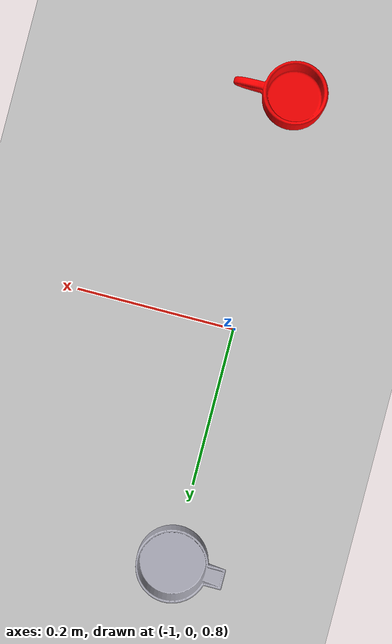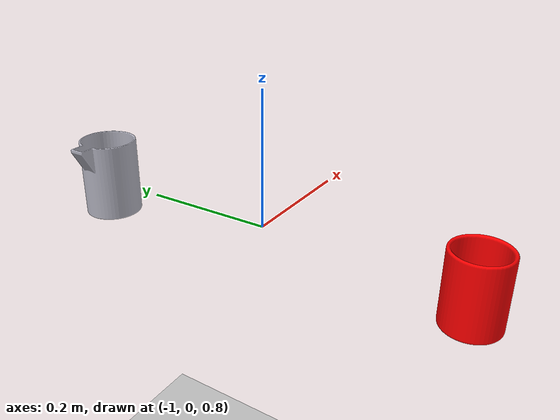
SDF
<?xml version="1.0"?>
<sdf version="1.9">
  <world name="barista_cafe">
    <plugin filename="gz-sim-physics-system" name="gz::sim::systems::Physics"/>
    <plugin filename="gz-sim-user-commands-system" name="gz::sim::systems::UserCommands"/>
    <plugin filename="gz-sim-scene-broadcaster-system" name="gz::sim::systems::SceneBroadcaster"/>

    <model name="ground_plane">
      <static>true</static>
      <link name="link">
        <collision name="collision">
          <geometry><plane>
            <normal>0 0 1</normal>
          </plane></geometry>
        </collision>
        <visual name="visual">
          <geometry><plane><normal>0 0 1</normal><size>20 20</size></plane></geometry>
        </visual>
      </link>
    </model>

    <include>
      <uri>model://cup</uri>
      <pose>-1 -0.3 0.751 0 0 3.14</pose>
    </include>

    <include>
      <uri>model://pitcher</uri>
      <pose>-1 0.3 0.751 0 0 3.14</pose>
    </include>

  </world>
</sdf>

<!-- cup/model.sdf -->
<sdf version="1.11">
  <model name="cup">
    <!--Publishes the model pose for controller use later-->
    <plugin filename="gz-sim-pose-publisher-system" name="gz::sim::systems::PosePublisher">
      <publish_model_pose>true</publish_model_pose>
      <publish_link_pose>false</publish_link_pose>
      <use_pose_vector_msg>true</use_pose_vector_msg>
      <update_frequency>30</update_frequency>
    </plugin>

    <link name="link">
      <inertial auto="true"/>

      <collision name="collision">
        <density>1220</density>
        <geometry>
          <mesh optimization="convex_decomposition">
            <uri>model://cup/rbe501_mug.stl</uri>
          </mesh>
        </geometry>
      </collision>

      <visual name="visual">
        <material>
          <ambient>1 0 0 1</ambient>
          <diffuse>1 0 0 1 </diffuse>
        </material>

        <geometry>
          <mesh>
            <uri>model://cup/rbe501_mug.stl</uri>
          </mesh>
        </geometry>
      </visual>
    </link>

  </model>
</sdf>

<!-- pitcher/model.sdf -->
<sdf version="1.11">
  <model name="pitcher">
    <!--Publishes the model pose for controller use later-->
    <plugin filename="gz-sim-pose-publisher-system" name="gz::sim::systems::PosePublisher">
      <publish_model_pose>true</publish_model_pose>
      <publish_link_pose>false</publish_link_pose>
      <use_pose_vector_msg>true</use_pose_vector_msg>
      <update_frequency>30</update_frequency>
    </plugin>

    <link name="link">
      <inertial auto="true"/>

      <collision name="collision">
        <density>1300</density>
        <geometry>
          <mesh optimization="convex_decomposition">
            <uri>model://pitcher/rbe501_pitcher.stl</uri>
          </mesh>
        </geometry>
      </collision>

      <visual name="visual">
        <material>
          <ambient>0.7 0.7 0.75</ambient>
          <diffuse>0.7 0.7 0.75</diffuse>
          <specular>0.8 0.8 0.8 1</specular>
        </material>

        <geometry>
          <mesh>
          <uri>model://pitcher/rbe501_pitcher.stl</uri></mesh>
        </geometry>
      </visual>
    </link>
  </model>
</sdf>
